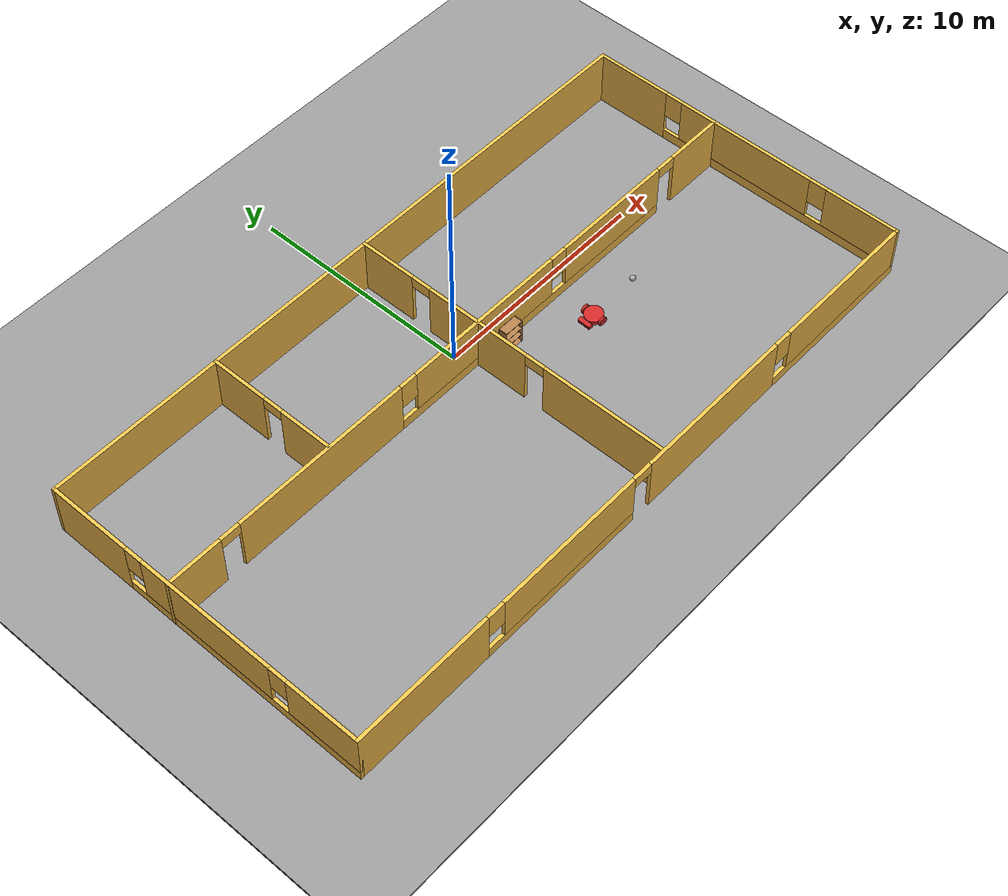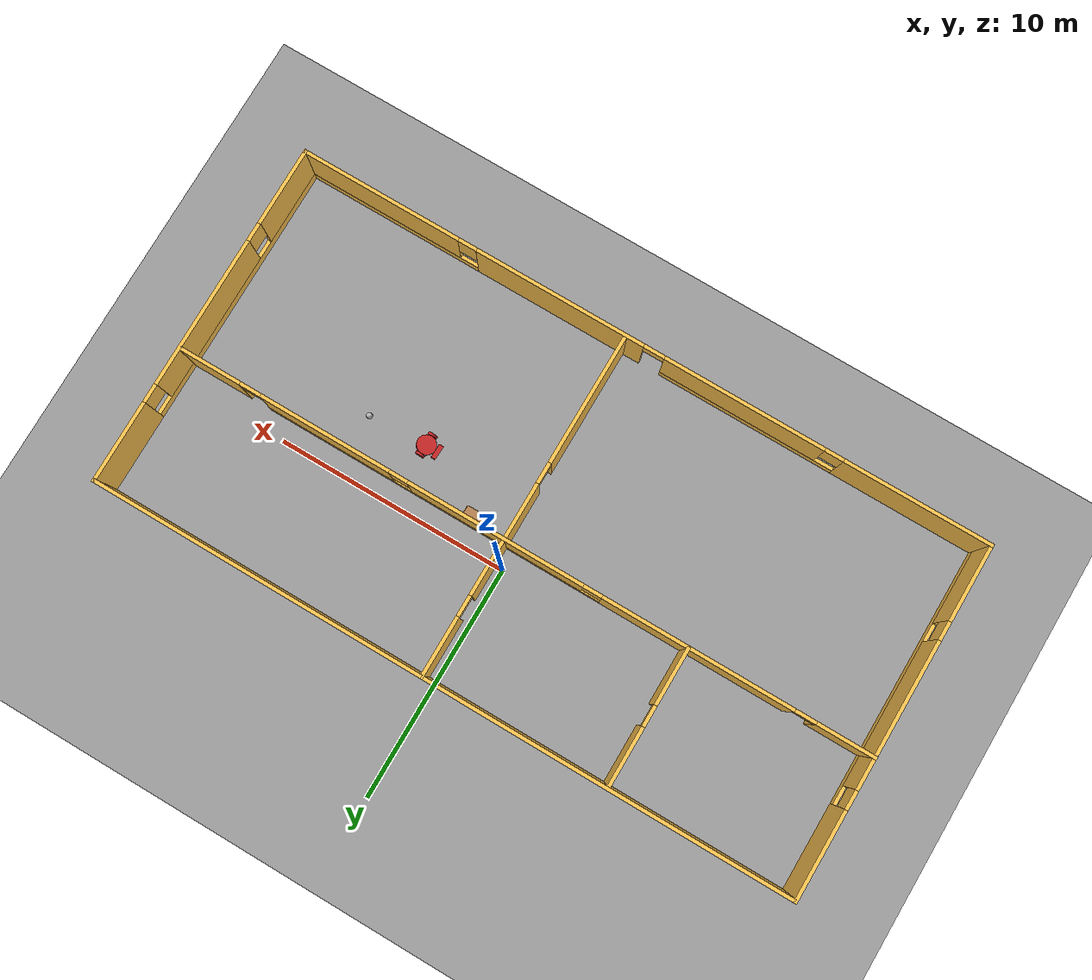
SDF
<sdf version="1.6">
 <world name="default">
  <model name="ground_plane">
   <static>1</static>
   <link name="link">
    <collision name="collision">
     <geometry><plane><normal>0 0 1</normal><size>100 100</size></plane></geometry>
     <surface><friction><ode><mu>100</mu><mu2>50</mu2></ode></friction></surface>
    </collision>
    <visual name="visual">
     <cast_shadows>0</cast_shadows>
     <geometry><plane><normal>0 0 1</normal><size>100 100</size></plane></geometry>
     <material>
      <script><uri>file://media/materials/scripts/gazebo.material</uri><name>Gazebo/Grey</name></script>
     </material>
    </visual>
   </link>
  </model>
  <model name="Building">
   <pose>-0.299558 -2.436 0 0 -0 0</pose>
   <link name="Wall_1">
    <pose>-14.92 0 0 0 0 -1.5708</pose>
    <visual name="Wall_1_Visual_0">
     <pose>-5.60194 0 1.25 0 -0 0</pose>
     <geometry><box><size>3.79611 0.15 2.5</size></box></geometry>
     <material>
      <script><uri>file://media/materials/scripts/gazebo.material</uri><name>Gazebo/Grey</name></script>
      <ambient>1 0.764706 0.305882 1</ambient>
     </material>
     <meta><layer>0</layer></meta>
    </visual>
    <collision name="Wall_1_Collision_0">
     <geometry><box><size>3.79611 0.15 2.5</size></box></geometry>
     <pose>-5.60194 0 1.25 0 -0 0</pose>
    </collision>
    <visual name="Wall_1_Visual_1">
     <pose>1.89806 0 0.25 0 -0 0</pose>
     <geometry><box><size>11.2039 0.15 0.5</size></box></geometry>
     <material>
      <script><uri>file://media/materials/scripts/gazebo.material</uri><name>Gazebo/Grey</name></script>
      <ambient>1 0.764706 0.305882 1</ambient>
     </material>
     <meta><layer>0</layer></meta>
    </visual>
    <collision name="Wall_1_Collision_1">
     <geometry><box><size>11.2039 0.15 0.5</size></box></geometry>
     <pose>1.89806 0 0.25 0 -0 0</pose>
    </collision>
    <visual name="Wall_1_Visual_2">
     <pose>0.228614 0 1.5 0 -0 0</pose>
     <geometry><box><size>6.265 0.15 2</size></box></geometry>
     <material>
      <script><uri>file://media/materials/scripts/gazebo.material</uri><name>Gazebo/Grey</name></script>
      <ambient>1 0.764706 0.305882 1</ambient>
     </material>
     <meta><layer>0</layer></meta>
    </visual>
    <collision name="Wall_1_Collision_2">
     <geometry><box><size>6.265 0.15 2</size></box></geometry>
     <pose>0.228614 0 1.5 0 -0 0</pose>
    </collision>
    <visual name="Wall_1_Visual_3">
     <pose>5.83056 0 1.5 0 -0 0</pose>
     <geometry><box><size>3.33888 0.15 2</size></box></geometry>
     <material>
      <script><uri>file://media/materials/scripts/gazebo.material</uri><name>Gazebo/Grey</name></script>
      <ambient>1 0.764706 0.305882 1</ambient>
     </material>
     <meta><layer>0</layer></meta>
    </visual>
    <collision name="Wall_1_Collision_3">
     <geometry><box><size>3.33888 0.15 2</size></box></geometry>
     <pose>5.83056 0 1.5 0 -0 0</pose>
    </collision>
    <visual name="Wall_1_Visual_4">
     <pose>-3.30389 0 1.9 0 -0 0</pose>
     <geometry><box><size>0.8 0.15 1.2</size></box></geometry>
     <material>
      <script><uri>file://media/materials/scripts/gazebo.material</uri><name>Gazebo/Grey</name></script>
      <ambient>1 0.764706 0.305882 1</ambient>
     </material>
     <meta><layer>0</layer></meta>
    </visual>
    <collision name="Wall_1_Collision_4">
     <geometry><box><size>0.8 0.15 1.2</size></box></geometry>
     <pose>-3.30389 0 1.9 0 -0 0</pose>
    </collision>
    <visual name="Wall_1_Visual_5">
     <pose>3.76112 0 1.9 0 -0 0</pose>
     <geometry><box><size>0.8 0.15 1.2</size></box></geometry>
     <material>
      <script><uri>file://media/materials/scripts/gazebo.material</uri><name>Gazebo/Grey</name></script>
      <ambient>1 0.764706 0.305882 1</ambient>
     </material>
     <meta><layer>0</layer></meta>
    </visual>
    <collision name="Wall_1_Collision_5">
     <geometry><box><size>0.8 0.15 1.2</size></box></geometry>
     <pose>3.76112 0 1.9 0 -0 0</pose>
    </collision>
   </link>
   <link name="Wall_12">
    <pose>-7.157 4.5 0 0 0 -1.5708</pose>
    <visual name="Wall_12_Visual_0">
     <pose>-1.68316 0 1.25 0 -0 0</pose>
     <geometry><box><size>2.63367 0.15 2.5</size></box></geometry>
     <material>
      <script><uri>file://media/materials/scripts/gazebo.material</uri><name>Gazebo/Grey</name></script>
      <ambient>1 0.764706 0.305882 1</ambient>
     </material>
     <meta><layer>0</layer></meta>
    </visual>
    <collision name="Wall_12_Collision_0">
     <geometry><box><size>2.63367 0.15 2.5</size></box></geometry>
     <pose>-1.68316 0 1.25 0 -0 0</pose>
    </collision>
    <visual name="Wall_12_Visual_1">
     <pose>1.76684 0 1.25 0 -0 0</pose>
     <geometry><box><size>2.46633 0.15 2.5</size></box></geometry>
     <material>
      <script><uri>file://media/materials/scripts/gazebo.material</uri><name>Gazebo/Grey</name></script>
      <ambient>1 0.764706 0.305882 1</ambient>
     </material>
     <meta><layer>0</layer></meta>
    </visual>
    <collision name="Wall_12_Collision_1">
     <geometry><box><size>2.46633 0.15 2.5</size></box></geometry>
     <pose>1.76684 0 1.25 0 -0 0</pose>
    </collision>
    <visual name="Wall_12_Visual_2">
     <pose>0.083673 0 2.25 0 -0 0</pose>
     <geometry><box><size>0.9 0.15 0.5</size></box></geometry>
     <material>
      <script><uri>file://media/materials/scripts/gazebo.material</uri><name>Gazebo/Grey</name></script>
      <ambient>1 0.764706 0.305882 1</ambient>
     </material>
     <meta><layer>0</layer></meta>
    </visual>
    <collision name="Wall_12_Collision_2">
     <geometry><box><size>0.9 0.15 0.5</size></box></geometry>
     <pose>0.083673 0 2.25 0 -0 0</pose>
    </collision>
   </link>
   <link name="Wall_14">
    <pose>0.697 4.5 0 0 0 -1.5708</pose>
    <visual name="Wall_14_Visual_0">
     <pose>-1.68316 0 1.25 0 -0 0</pose>
     <geometry><box><size>2.63367 0.15 2.5</size></box></geometry>
     <material>
      <script><uri>file://media/materials/scripts/gazebo.material</uri><name>Gazebo/Grey</name></script>
      <ambient>1 0.764706 0.305882 1</ambient>
     </material>
     <meta><layer>0</layer></meta>
    </visual>
    <collision name="Wall_14_Collision_0">
     <geometry><box><size>2.63367 0.15 2.5</size></box></geometry>
     <pose>-1.68316 0 1.25 0 -0 0</pose>
    </collision>
    <visual name="Wall_14_Visual_1">
     <pose>1.76684 0 1.25 0 -0 0</pose>
     <geometry><box><size>2.46633 0.15 2.5</size></box></geometry>
     <material>
      <script><uri>file://media/materials/scripts/gazebo.material</uri><name>Gazebo/Grey</name></script>
      <ambient>1 0.764706 0.305882 1</ambient>
     </material>
     <meta><layer>0</layer></meta>
    </visual>
    <collision name="Wall_14_Collision_1">
     <geometry><box><size>2.46633 0.15 2.5</size></box></geometry>
     <pose>1.76684 0 1.25 0 -0 0</pose>
    </collision>
    <visual name="Wall_14_Visual_2">
     <pose>0.083673 0 2.25 0 -0 0</pose>
     <geometry><box><size>0.9 0.15 0.5</size></box></geometry>
     <material>
      <script><uri>file://media/materials/scripts/gazebo.material</uri><name>Gazebo/Grey</name></script>
      <ambient>1 0.764706 0.305882 1</ambient>
     </material>
     <meta><layer>0</layer></meta>
    </visual>
    <collision name="Wall_14_Collision_2">
     <geometry><box><size>0.9 0.15 0.5</size></box></geometry>
     <pose>0.083673 0 2.25 0 -0 0</pose>
    </collision>
   </link>
   <link name="Wall_16">
    <pose>0.697 -2.85 0 0 0 -1.5708</pose>
    <visual name="Wall_16_Visual_0">
     <pose>-3.23943 0 1.25 0 -0 0</pose>
     <geometry><box><size>2.52114 0.15 2.5</size></box></geometry>
     <material>
      <script><uri>file://media/materials/scripts/gazebo.material</uri><name>Gazebo/Grey</name></script>
      <ambient>1 0.764706 0.305882 1</ambient>
     </material>
     <meta><layer>0</layer></meta>
    </visual>
    <collision name="Wall_16_Collision_0">
     <geometry><box><size>2.52114 0.15 2.5</size></box></geometry>
     <pose>-3.23943 0 1.25 0 -0 0</pose>
    </collision>
    <visual name="Wall_16_Visual_1">
     <pose>1.71057 0 1.25 0 -0 0</pose>
     <geometry><box><size>5.57886 0.15 2.5</size></box></geometry>
     <material>
      <script><uri>file://media/materials/scripts/gazebo.material</uri><name>Gazebo/Grey</name></script>
      <ambient>1 0.764706 0.305882 1</ambient>
     </material>
     <meta><layer>0</layer></meta>
    </visual>
    <collision name="Wall_16_Collision_1">
     <geometry><box><size>5.57886 0.15 2.5</size></box></geometry>
     <pose>1.71057 0 1.25 0 -0 0</pose>
    </collision>
    <visual name="Wall_16_Visual_2">
     <pose>-1.52886 0 2.25 0 -0 0</pose>
     <geometry><box><size>0.9 0.15 0.5</size></box></geometry>
     <material>
      <script><uri>file://media/materials/scripts/gazebo.material</uri><name>Gazebo/Grey</name></script>
      <ambient>1 0.764706 0.305882 1</ambient>
     </material>
     <meta><layer>0</layer></meta>
    </visual>
    <collision name="Wall_16_Collision_2">
     <geometry><box><size>0.9 0.15 0.5</size></box></geometry>
     <pose>-1.52886 0 2.25 0 -0 0</pose>
    </collision>
   </link>
   <link name="Wall_4">
    <pose>0.005 -7.425 0 0 -0 0</pose>
    <visual name="Wall_4_Visual_0">
     <pose>-11.8455 0 1.25 0 -0 0</pose>
     <geometry><box><size>6.30901 0.15 2.5</size></box></geometry>
     <material>
      <script><uri>file://media/materials/scripts/gazebo.material</uri><name>Gazebo/Grey</name></script>
      <ambient>1 0.764706 0.305882 1</ambient>
     </material>
     <meta><layer>0</layer></meta>
    </visual>
    <collision name="Wall_4_Collision_0">
     <geometry><box><size>6.30901 0.15 2.5</size></box></geometry>
     <pose>-11.8455 0 1.25 0 -0 0</pose>
    </collision>
    <visual name="Wall_4_Visual_1">
     <pose>3.58082 0 1.25 0 -0 0</pose>
     <geometry><box><size>7.34783 0.15 2.5</size></box></geometry>
     <material>
      <script><uri>file://media/materials/scripts/gazebo.material</uri><name>Gazebo/Grey</name></script>
      <ambient>1 0.764706 0.305882 1</ambient>
     </material>
     <meta><layer>0</layer></meta>
    </visual>
    <collision name="Wall_4_Collision_1">
     <geometry><box><size>7.34783 0.15 2.5</size></box></geometry>
     <pose>3.58082 0 1.25 0 -0 0</pose>
    </collision>
    <visual name="Wall_4_Visual_2">
     <pose>-4.84204 0 0.25 0 -0 0</pose>
     <geometry><box><size>7.6979 0.15 0.5</size></box></geometry>
     <material>
      <script><uri>file://media/materials/scripts/gazebo.material</uri><name>Gazebo/Grey</name></script>
      <ambient>1 0.764706 0.305882 1</ambient>
     </material>
     <meta><layer>0</layer></meta>
    </visual>
    <collision name="Wall_4_Collision_2">
     <geometry><box><size>7.6979 0.15 0.5</size></box></geometry>
     <pose>-4.84204 0 0.25 0 -0 0</pose>
    </collision>
    <visual name="Wall_4_Visual_3">
     <pose>11.1274 0 0.25 0 -0 0</pose>
     <geometry><box><size>7.74526 0.15 0.5</size></box></geometry>
     <material>
      <script><uri>file://media/materials/scripts/gazebo.material</uri><name>Gazebo/Grey</name></script>
      <ambient>1 0.764706 0.305882 1</ambient>
     </material>
     <meta><layer>0</layer></meta>
    </visual>
    <collision name="Wall_4_Collision_3">
     <geometry><box><size>7.74526 0.15 0.5</size></box></geometry>
     <pose>11.1274 0 0.25 0 -0 0</pose>
    </collision>
    <visual name="Wall_4_Visual_4">
     <pose>-4.44204 0 1.5 0 -0 0</pose>
     <geometry><box><size>6.8979 0.15 2</size></box></geometry>
     <material>
      <script><uri>file://media/materials/scripts/gazebo.material</uri><name>Gazebo/Grey</name></script>
      <ambient>1 0.764706 0.305882 1</ambient>
     </material>
     <meta><layer>0</layer></meta>
    </visual>
    <collision name="Wall_4_Collision_4">
     <geometry><box><size>6.8979 0.15 2</size></box></geometry>
     <pose>-4.44204 0 1.5 0 -0 0</pose>
    </collision>
    <visual name="Wall_4_Visual_5">
     <pose>-4.44204 0 1.5 0 -0 0</pose>
     <geometry><box><size>6.8979 0.15 2</size></box></geometry>
     <material>
      <script><uri>file://media/materials/scripts/gazebo.material</uri><name>Gazebo/Grey</name></script>
      <ambient>1 0.764706 0.305882 1</ambient>
     </material>
     <meta><layer>0</layer></meta>
    </visual>
    <collision name="Wall_4_Collision_5">
     <geometry><box><size>6.8979 0.15 2</size></box></geometry>
     <pose>-4.44204 0 1.5 0 -0 0</pose>
    </collision>
    <visual name="Wall_4_Visual_6">
     <pose>11.5274 0 1.5 0 -0 0</pose>
     <geometry><box><size>6.94526 0.15 2</size></box></geometry>
     <material>
      <script><uri>file://media/materials/scripts/gazebo.material</uri><name>Gazebo/Grey</name></script>
      <ambient>1 0.764706 0.305882 1</ambient>
     </material>
     <meta><layer>0</layer></meta>
    </visual>
    <collision name="Wall_4_Collision_6">
     <geometry><box><size>6.94526 0.15 2</size></box></geometry>
     <pose>11.5274 0 1.5 0 -0 0</pose>
    </collision>
    <visual name="Wall_4_Visual_7">
     <pose>-8.29099 0 1.9 0 -0 0</pose>
     <geometry><box><size>0.8 0.15 1.2</size></box></geometry>
     <material>
      <script><uri>file://media/materials/scripts/gazebo.material</uri><name>Gazebo/Grey</name></script>
      <ambient>1 0.764706 0.305882 1</ambient>
     </material>
     <meta><layer>0</layer></meta>
    </visual>
    <collision name="Wall_4_Collision_7">
     <geometry><box><size>0.8 0.15 1.2</size></box></geometry>
     <pose>-8.29099 0 1.9 0 -0 0</pose>
    </collision>
    <visual name="Wall_4_Visual_8">
     <pose>7.65474 0 1.9 0 -0 0</pose>
     <geometry><box><size>0.8 0.15 1.2</size></box></geometry>
     <material>
      <script><uri>file://media/materials/scripts/gazebo.material</uri><name>Gazebo/Grey</name></script>
      <ambient>1 0.764706 0.305882 1</ambient>
     </material>
     <meta><layer>0</layer></meta>
    </visual>
    <collision name="Wall_4_Collision_8">
     <geometry><box><size>0.8 0.15 1.2</size></box></geometry>
     <pose>7.65474 0 1.9 0 -0 0</pose>
    </collision>
    <visual name="Wall_4_Visual_9">
     <pose>-0.543092 0 2.25 0 -0 0</pose>
     <geometry><box><size>0.9 0.15 0.5</size></box></geometry>
     <material>
      <script><uri>file://media/materials/scripts/gazebo.material</uri><name>Gazebo/Grey</name></script>
      <ambient>1 0.764706 0.305882 1</ambient>
     </material>
     <meta><layer>0</layer></meta>
    </visual>
    <collision name="Wall_4_Collision_9">
     <geometry><box><size>0.9 0.15 0.5</size></box></geometry>
     <pose>-0.543092 0 2.25 0 -0 0</pose>
    </collision>
    <visual name="Wall_4_Visual_10">
     <pose>-0.543092 0 2.25 0 -0 0</pose>
     <geometry><box><size>0.9 0.15 0.5</size></box></geometry>
     <material>
      <script><uri>file://media/materials/scripts/gazebo.material</uri><name>Gazebo/Grey</name></script>
      <ambient>1 0.764706 0.305882 1</ambient>
     </material>
     <meta><layer>0</layer></meta>
    </visual>
    <collision name="Wall_4_Collision_10">
     <geometry><box><size>0.9 0.15 0.5</size></box></geometry>
     <pose>-0.543092 0 2.25 0 -0 0</pose>
    </collision>
   </link>
   <link name="Wall_6">
    <collision name="Wall_6_Collision">
     <geometry><box><size>30 0.15 2.5</size></box></geometry>
     <pose>0 0 1.25 0 -0 0</pose>
    </collision>
    <visual name="Wall_6_Visual">
     <pose>0 0 1.25 0 -0 0</pose>
     <geometry><box><size>30 0.15 2.5</size></box></geometry>
     <material>
      <script><uri>file://media/materials/scripts/gazebo.material</uri><name>Gazebo/Grey</name></script>
      <ambient>1 0.764706 0.305882 1</ambient>
     </material>
     <meta><layer>0</layer></meta>
    </visual>
    <pose>0.005 7.425 0 0 -0 0</pose>
   </link>
   <link name="Wall_7">
    <pose>14.93 0 0 0 0 -1.5708</pose>
    <visual name="Wall_7_Visual_0">
     <pose>-5.74231 0 1.25 0 -0 0</pose>
     <geometry><box><size>3.51538 0.15 2.5</size></box></geometry>
     <material>
      <script><uri>file://media/materials/scripts/gazebo.material</uri><name>Gazebo/Grey</name></script>
      <ambient>1 0.764706 0.305882 1</ambient>
     </material>
     <meta><layer>0</layer></meta>
    </visual>
    <collision name="Wall_7_Collision_0">
     <geometry><box><size>3.51538 0.15 2.5</size></box></geometry>
     <pose>-5.74231 0 1.25 0 -0 0</pose>
    </collision>
    <visual name="Wall_7_Visual_1">
     <pose>1.75769 0 0.25 0 -0 0</pose>
     <geometry><box><size>11.4846 0.15 0.5</size></box></geometry>
     <material>
      <script><uri>file://media/materials/scripts/gazebo.material</uri><name>Gazebo/Grey</name></script>
      <ambient>1 0.764706 0.305882 1</ambient>
     </material>
     <meta><layer>0</layer></meta>
    </visual>
    <collision name="Wall_7_Collision_1">
     <geometry><box><size>11.4846 0.15 0.5</size></box></geometry>
     <pose>1.75769 0 0.25 0 -0 0</pose>
    </collision>
    <visual name="Wall_7_Visual_2">
     <pose>0.055868 0 1.5 0 -0 0</pose>
     <geometry><box><size>6.48097 0.15 2</size></box></geometry>
     <material>
      <script><uri>file://media/materials/scripts/gazebo.material</uri><name>Gazebo/Grey</name></script>
      <ambient>1 0.764706 0.305882 1</ambient>
     </material>
     <meta><layer>0</layer></meta>
    </visual>
    <collision name="Wall_7_Collision_2">
     <geometry><box><size>6.48097 0.15 2</size></box></geometry>
     <pose>0.055868 0 1.5 0 -0 0</pose>
    </collision>
    <visual name="Wall_7_Visual_3">
     <pose>5.79818 0 1.5 0 -0 0</pose>
     <geometry><box><size>3.40365 0.15 2</size></box></geometry>
     <material>
      <script><uri>file://media/materials/scripts/gazebo.material</uri><name>Gazebo/Grey</name></script>
      <ambient>1 0.764706 0.305882 1</ambient>
     </material>
     <meta><layer>0</layer></meta>
    </visual>
    <collision name="Wall_7_Collision_3">
     <geometry><box><size>3.40365 0.15 2</size></box></geometry>
     <pose>5.79818 0 1.5 0 -0 0</pose>
    </collision>
    <visual name="Wall_7_Visual_4">
     <pose>-3.58462 0 1.9 0 -0 0</pose>
     <geometry><box><size>0.8 0.15 1.2</size></box></geometry>
     <material>
      <script><uri>file://media/materials/scripts/gazebo.material</uri><name>Gazebo/Grey</name></script>
      <ambient>1 0.764706 0.305882 1</ambient>
     </material>
     <meta><layer>0</layer></meta>
    </visual>
    <collision name="Wall_7_Collision_4">
     <geometry><box><size>0.8 0.15 1.2</size></box></geometry>
     <pose>-3.58462 0 1.9 0 -0 0</pose>
    </collision>
    <visual name="Wall_7_Visual_5">
     <pose>3.69635 0 1.9 0 -0 0</pose>
     <geometry><box><size>0.8 0.15 1.2</size></box></geometry>
     <material>
      <script><uri>file://media/materials/scripts/gazebo.material</uri><name>Gazebo/Grey</name></script>
      <ambient>1 0.764706 0.305882 1</ambient>
     </material>
     <meta><layer>0</layer></meta>
    </visual>
    <collision name="Wall_7_Collision_5">
     <geometry><box><size>0.8 0.15 1.2</size></box></geometry>
     <pose>3.69635 0 1.9 0 -0 0</pose>
    </collision>
   </link>
   <link name="Wall_9">
    <pose>-0.005 1.542 0 0 -0 0</pose>
    <visual name="Wall_9_Visual_0">
     <pose>-13.7533 0 1.25 0 -0 0</pose>
     <geometry><box><size>2.49331 0.15 2.5</size></box></geometry>
     <material>
      <script><uri>file://media/materials/scripts/gazebo.material</uri><name>Gazebo/Grey</name></script>
      <ambient>1 0.764706 0.305882 1</ambient>
     </material>
     <meta><layer>0</layer></meta>
    </visual>
    <collision name="Wall_9_Collision_0">
     <geometry><box><size>2.49331 0.15 2.5</size></box></geometry>
     <pose>-13.7533 0 1.25 0 -0 0</pose>
    </collision>
    <visual name="Wall_9_Visual_1">
     <pose>-7.55232 0 1.25 0 -0 0</pose>
     <geometry><box><size>8.10873 0.15 2.5</size></box></geometry>
     <material>
      <script><uri>file://media/materials/scripts/gazebo.material</uri><name>Gazebo/Grey</name></script>
      <ambient>1 0.764706 0.305882 1</ambient>
     </material>
     <meta><layer>0</layer></meta>
    </visual>
    <collision name="Wall_9_Collision_1">
     <geometry><box><size>8.10873 0.15 2.5</size></box></geometry>
     <pose>-7.55232 0 1.25 0 -0 0</pose>
    </collision>
    <visual name="Wall_9_Visual_2">
     <pose>13.6177 0 1.25 0 -0 0</pose>
     <geometry><box><size>2.76464 0.15 2.5</size></box></geometry>
     <material>
      <script><uri>file://media/materials/scripts/gazebo.material</uri><name>Gazebo/Grey</name></script>
      <ambient>1 0.764706 0.305882 1</ambient>
     </material>
     <meta><layer>0</layer></meta>
    </visual>
    <collision name="Wall_9_Collision_2">
     <geometry><box><size>2.76464 0.15 2.5</size></box></geometry>
     <pose>13.6177 0 1.25 0 -0 0</pose>
    </collision>
    <visual name="Wall_9_Visual_3">
     <pose>3.9187 0 0.25 0 -0 0</pose>
     <geometry><box><size>14.8333 0.15 0.5</size></box></geometry>
     <material>
      <script><uri>file://media/materials/scripts/gazebo.material</uri><name>Gazebo/Grey</name></script>
      <ambient>1 0.764706 0.305882 1</ambient>
     </material>
     <meta><layer>0</layer></meta>
    </visual>
    <collision name="Wall_9_Collision_3">
     <geometry><box><size>14.8333 0.15 0.5</size></box></geometry>
     <pose>3.9187 0 0.25 0 -0 0</pose>
    </collision>
    <visual name="Wall_9_Visual_4">
     <pose>1.08957 0 1.5 0 -0 0</pose>
     <geometry><box><size>7.57507 0.15 2</size></box></geometry>
     <material>
      <script><uri>file://media/materials/scripts/gazebo.material</uri><name>Gazebo/Grey</name></script>
      <ambient>1 0.764706 0.305882 1</ambient>
     </material>
     <meta><layer>0</layer></meta>
    </visual>
    <collision name="Wall_9_Collision_4">
     <geometry><box><size>7.57507 0.15 2</size></box></geometry>
     <pose>1.08957 0 1.5 0 -0 0</pose>
    </collision>
    <visual name="Wall_9_Visual_5">
     <pose>8.50624 0 1.5 0 -0 0</pose>
     <geometry><box><size>5.65825 0.15 2</size></box></geometry>
     <material>
      <script><uri>file://media/materials/scripts/gazebo.material</uri><name>Gazebo/Grey</name></script>
      <ambient>1 0.764706 0.305882 1</ambient>
     </material>
     <meta><layer>0</layer></meta>
    </visual>
    <collision name="Wall_9_Collision_5">
     <geometry><box><size>5.65825 0.15 2</size></box></geometry>
     <pose>8.50624 0 1.5 0 -0 0</pose>
    </collision>
    <visual name="Wall_9_Visual_6">
     <pose>-3.09796 0 1.9 0 -0 0</pose>
     <geometry><box><size>0.8 0.15 1.2</size></box></geometry>
     <material>
      <script><uri>file://media/materials/scripts/gazebo.material</uri><name>Gazebo/Grey</name></script>
      <ambient>1 0.764706 0.305882 1</ambient>
     </material>
     <meta><layer>0</layer></meta>
    </visual>
    <collision name="Wall_9_Collision_6">
     <geometry><box><size>0.8 0.15 1.2</size></box></geometry>
     <pose>-3.09796 0 1.9 0 -0 0</pose>
    </collision>
    <visual name="Wall_9_Visual_7">
     <pose>5.27711 0 1.9 0 -0 0</pose>
     <geometry><box><size>0.8 0.15 1.2</size></box></geometry>
     <material>
      <script><uri>file://media/materials/scripts/gazebo.material</uri><name>Gazebo/Grey</name></script>
      <ambient>1 0.764706 0.305882 1</ambient>
     </material>
     <meta><layer>0</layer></meta>
    </visual>
    <collision name="Wall_9_Collision_7">
     <geometry><box><size>0.8 0.15 1.2</size></box></geometry>
     <pose>5.27711 0 1.9 0 -0 0</pose>
    </collision>
    <visual name="Wall_9_Visual_8">
     <pose>-12.0567 0 2.25 0 -0 0</pose>
     <geometry><box><size>0.9 0.15 0.5</size></box></geometry>
     <material>
      <script><uri>file://media/materials/scripts/gazebo.material</uri><name>Gazebo/Grey</name></script>
      <ambient>1 0.764706 0.305882 1</ambient>
     </material>
     <meta><layer>0</layer></meta>
    </visual>
    <collision name="Wall_9_Collision_8">
     <geometry><box><size>0.9 0.15 0.5</size></box></geometry>
     <pose>-12.0567 0 2.25 0 -0 0</pose>
    </collision>
    <visual name="Wall_9_Visual_9">
     <pose>11.7854 0 2.25 0 -0 0</pose>
     <geometry><box><size>0.9 0.15 0.5</size></box></geometry>
     <material>
      <script><uri>file://media/materials/scripts/gazebo.material</uri><name>Gazebo/Grey</name></script>
      <ambient>1 0.764706 0.305882 1</ambient>
     </material>
     <meta><layer>0</layer></meta>
    </visual>
    <collision name="Wall_9_Collision_9">
     <geometry><box><size>0.9 0.15 0.5</size></box></geometry>
     <pose>11.7854 0 2.25 0 -0 0</pose>
    </collision>
   </link>
   <static>1</static>
  </model>
  <model name="Robot_0">
   <link name="link_0">
    <pose>0 0 0.2 0 -0 0</pose>
    <inertial>
     <mass>1</mass>
     <inertia><ixx>0.145833</ixx><ixy>0</ixy><ixz>0</ixz><iyy>0.145833</iyy><iyz>0</iyz><izz>0.125</izz></inertia>
    </inertial>
    <visual name="visual">
     <geometry><cylinder><radius>0.4</radius><length>0.2</length></cylinder></geometry>
     <material>
      <lighting>1</lighting>
      <script><uri>file://media/materials/scripts/gazebo.material</uri><name>Gazebo/Red</name></script>
      <shader type="pixel"><normal_map>__default__</normal_map></shader>
      <ambient>1 0.1 0.1 1</ambient>
      <diffuse>1 0.1 0.1 1</diffuse>
      <specular>0.01 0.01 0.01 1</specular>
      <emissive>0 0 0 1</emissive>
     </material>
    </visual>
    <collision name="collision">
     <geometry><cylinder><radius>0.4</radius><length>0.2</length></cylinder></geometry>
     <surface>
      <friction>
       <ode><mu>1</mu><mu2>1</mu2><fdir1>0 0 0</fdir1><slip1>0</slip1><slip2>0</slip2></ode>
       <torsional>
        <coefficient>1</coefficient>
        <patch_radius>0</patch_radius>
        <surface_radius>0</surface_radius>
        <use_patch_radius>1</use_patch_radius>
        <ode><slip>0</slip></ode>
       </torsional>
      </friction>
      <bounce><restitution_coefficient>0</restitution_coefficient><threshold>1e+06</threshold></bounce>
      <contact>
       <collide_without_contact>0</collide_without_contact>
       <collide_without_contact_bitmask>1</collide_without_contact_bitmask>
       <collide_bitmask>1</collide_bitmask>
       <ode>
        <soft_cfm>0</soft_cfm>
        <soft_erp>0.2</soft_erp>
        <kp>1e+13</kp>
        <kd>1</kd>
        <max_vel>0.01</max_vel>
        <min_depth>0</min_depth>
       </ode>
       <bullet>
        <split_impulse>1</split_impulse>
        <split_impulse_penetration_threshold>-0.01</split_impulse_penetration_threshold>
        <soft_cfm>0</soft_cfm>
        <soft_erp>0.2</soft_erp>
        <kp>1e+13</kp>
        <kd>1</kd>
       </bullet>
      </contact>
     </surface>
    </collision>
   </link>
   <link name="link_1">
    <pose>0 -0.450019 0.2 1.5707 -0 0</pose>
    <inertial>
     <mass>1</mass>
     <inertia><ixx>0.145833</ixx><ixy>0</ixy><ixz>0</ixz><iyy>0.145833</iyy><iyz>0</iyz><izz>0.125</izz></inertia>
    </inertial>
    <visual name="visual">
     <geometry><cylinder><radius>0.2</radius><length>0.1</length></cylinder></geometry>
     <material>
      <lighting>1</lighting>
      <script><uri>file://media/materials/scripts/gazebo.material</uri><name>Gazebo/Red</name></script>
      <shader type="pixel"><normal_map>__default__</normal_map></shader>
      <ambient>1 0.1 0.1 1</ambient>
      <diffuse>1 0.1 0.1 1</diffuse>
      <specular>0.01 0.01 0.01 1</specular>
      <emissive>0 0 0 1</emissive>
     </material>
    </visual>
    <collision name="collision">
     <geometry><cylinder><radius>0.2</radius><length>0.1</length></cylinder></geometry>
     <surface>
      <friction>
       <ode><mu>1</mu><mu2>1</mu2><fdir1>0 0 0</fdir1><slip1>0</slip1><slip2>0</slip2></ode>
       <torsional>
        <coefficient>1</coefficient>
        <patch_radius>0</patch_radius>
        <surface_radius>0</surface_radius>
        <use_patch_radius>1</use_patch_radius>
        <ode><slip>0</slip></ode>
       </torsional>
      </friction>
      <bounce><restitution_coefficient>0</restitution_coefficient><threshold>1e+06</threshold></bounce>
      <contact>
       <collide_without_contact>0</collide_without_contact>
       <collide_without_contact_bitmask>1</collide_without_contact_bitmask>
       <collide_bitmask>1</collide_bitmask>
       <ode>
        <soft_cfm>0</soft_cfm>
        <soft_erp>0.2</soft_erp>
        <kp>1e+13</kp>
        <kd>1</kd>
        <max_vel>0.01</max_vel>
        <min_depth>0</min_depth>
       </ode>
       <bullet>
        <split_impulse>1</split_impulse>
        <split_impulse_penetration_threshold>-0.01</split_impulse_penetration_threshold>
        <soft_cfm>0</soft_cfm>
        <soft_erp>0.2</soft_erp>
        <kp>1e+13</kp>
        <kd>1</kd>
       </bullet>
      </contact>
     </surface>
    </collision>
   </link>
   <link name="link_1_clone">
    <pose>0 0.450019 0.2 1.5707 -0 0</pose>
    <inertial>
     <mass>1</mass>
     <inertia><ixx>0.145833</ixx><ixy>0</ixy><ixz>0</ixz><iyy>0.145833</iyy><iyz>0</iyz><izz>0.125</izz></inertia>
    </inertial>
    <visual name="visual">
     <geometry><cylinder><radius>0.2</radius><length>0.1</length></cylinder></geometry>
     <material>
      <lighting>1</lighting>
      <script><uri>file://media/materials/scripts/gazebo.material</uri><name>Gazebo/Red</name></script>
      <shader type="pixel"><normal_map>__default__</normal_map></shader>
      <ambient>1 0.1 0.1 1</ambient>
      <diffuse>1 0.1 0.1 1</diffuse>
      <specular>0.01 0.01 0.01 1</specular>
      <emissive>0 0 0 1</emissive>
     </material>
    </visual>
    <collision name="collision">
     <geometry><cylinder><radius>0.2</radius><length>0.1</length></cylinder></geometry>
     <surface>
      <friction>
       <ode><mu>1</mu><mu2>1</mu2><fdir1>0 0 0</fdir1><slip1>0</slip1><slip2>0</slip2></ode>
       <torsional>
        <coefficient>1</coefficient>
        <patch_radius>0</patch_radius>
        <surface_radius>0</surface_radius>
        <use_patch_radius>1</use_patch_radius>
        <ode><slip>0</slip></ode>
       </torsional>
      </friction>
      <bounce><restitution_coefficient>0</restitution_coefficient><threshold>1e+06</threshold></bounce>
      <contact>
       <collide_without_contact>0</collide_without_contact>
       <collide_without_contact_bitmask>1</collide_without_contact_bitmask>
       <collide_bitmask>1</collide_bitmask>
       <ode>
        <soft_cfm>0</soft_cfm>
        <soft_erp>0.2</soft_erp>
        <kp>1e+13</kp>
        <kd>1</kd>
        <max_vel>0.01</max_vel>
        <min_depth>0</min_depth>
       </ode>
       <bullet>
        <split_impulse>1</split_impulse>
        <split_impulse_penetration_threshold>-0.01</split_impulse_penetration_threshold>
        <soft_cfm>0</soft_cfm>
        <soft_erp>0.2</soft_erp>
        <kp>1e+13</kp>
        <kd>1</kd>
       </bullet>
      </contact>
     </surface>
    </collision>
   </link>
   <link name="link_2">
    <pose>-0.5 0 0.2 0 -0 0</pose>
    <inertial>
     <mass>0.1</mass>
     <inertia>
      <ixx>0.166667</ixx>
      <ixy>0</ixy>
      <ixz>0</ixz>
      <iyy>0.166667</iyy>
      <iyz>0</iyz>
      <izz>0.166667</izz>
     </inertia>
    </inertial>
    <visual name="visual">
     <geometry><box><size>0.2 0.6 0.2</size></box></geometry>
     <material>
      <lighting>1</lighting>
      <script><uri>file://media/materials/scripts/gazebo.material</uri><name>Gazebo/Red</name></script>
      <shader type="pixel"><normal_map>__default__</normal_map></shader>
      <ambient>1 0.1 0.1 1</ambient>
      <diffuse>1 0.1 0.1 1</diffuse>
      <specular>0.01 0.01 0.01 1</specular>
      <emissive>0 0 0 1</emissive>
     </material>
    </visual>
    <collision name="collision">
     <geometry><box><size>0.2 0.6 0.2</size></box></geometry>
     <surface>
      <friction>
       <ode><mu>1</mu><mu2>1</mu2><fdir1>0 0 0</fdir1><slip1>0</slip1><slip2>0</slip2></ode>
       <torsional>
        <coefficient>1</coefficient>
        <patch_radius>0</patch_radius>
        <surface_radius>0</surface_radius>
        <use_patch_radius>1</use_patch_radius>
        <ode><slip>0</slip></ode>
       </torsional>
      </friction>
      <bounce><restitution_coefficient>0</restitution_coefficient><threshold>1e+06</threshold></bounce>
      <contact>
       <collide_without_contact>0</collide_without_contact>
       <collide_without_contact_bitmask>1</collide_without_contact_bitmask>
       <collide_bitmask>1</collide_bitmask>
       <ode>
        <soft_cfm>0</soft_cfm>
        <soft_erp>0.2</soft_erp>
        <kp>1e+13</kp>
        <kd>1</kd>
        <max_vel>0.01</max_vel>
        <min_depth>0</min_depth>
       </ode>
       <bullet>
        <split_impulse>1</split_impulse>
        <split_impulse_penetration_threshold>-0.01</split_impulse_penetration_threshold>
        <soft_cfm>0</soft_cfm>
        <soft_erp>0.2</soft_erp>
        <kp>1e+13</kp>
        <kd>1</kd>
       </bullet>
      </contact>
     </surface>
    </collision>
   </link>
   <joint name="link_0_JOINT_0" type="revolute">
    <parent>link_0</parent>
    <child>link_1</child>
    <axis>
     <xyz>0 0 1</xyz>
     <use_parent_model_frame>0</use_parent_model_frame>
     <limit>
      <lower>-1.79769e+308</lower>
      <upper>1.79769e+308</upper>
      <effort>-1</effort>
      <velocity>-1</velocity>
     </limit>
     <dynamics>
      <spring_reference>0</spring_reference>
      <spring_stiffness>0</spring_stiffness>
      <damping>0</damping>
     </dynamics>
    </axis>
    <physics>
     <ode><limit><cfm>0</cfm><erp>0.2</erp></limit><suspension><cfm>0</cfm><erp>0.2</erp></suspension></ode>
    </physics>
   </joint>
   <joint name="link_0_JOINT_1" type="revolute">
    <parent>link_0</parent>
    <child>link_1_clone</child>
    <axis>
     <xyz>0 0 1</xyz>
     <use_parent_model_frame>0</use_parent_model_frame>
     <limit>
      <lower>-1.79769e+308</lower>
      <upper>1.79769e+308</upper>
      <effort>-1</effort>
      <velocity>-1</velocity>
     </limit>
     <dynamics>
      <spring_reference>0</spring_reference>
      <spring_stiffness>0</spring_stiffness>
      <damping>0</damping>
     </dynamics>
    </axis>
    <physics>
     <ode><limit><cfm>0</cfm><erp>0.2</erp></limit><suspension><cfm>0</cfm><erp>0.2</erp></suspension></ode>
    </physics>
   </joint>
   <joint name="link_0_JOINT_9" type="fixed">
    <parent>link_0</parent>
    <child>link_2</child>
    <physics>
     <ode><limit><cfm>0</cfm><erp>0.2</erp></limit><suspension><cfm>0</cfm><erp>0.2</erp></suspension></ode>
    </physics>
   </joint>
   <static>0</static>
   <pose>5.11604 -2.71179 0.002884 1e-06 -0.169897 -0.036809</pose>
  </model>
  <model name="bookshelf">
   <static>1</static>
   <link name="link">
    <inertial><mass>1</mass></inertial>
    <collision name="back">
     <pose>0 0.005 0.6 0 -0 0</pose>
     <geometry><box><size>0.9 0.01 1.2</size></box></geometry>
    </collision>
    <visual name="visual1">
     <pose>0 0.005 0.6 0 -0 0</pose>
     <geometry><box><size>0.9 0.01 1.2</size></box></geometry>
     <material>
      <script><uri>file://media/materials/scripts/gazebo.material</uri><name>Gazebo/Wood</name></script>
     </material>
    </visual>
    <collision name="left_side">
     <pose>0.45 -0.195 0.6 0 -0 0</pose>
     <geometry><box><size>0.02 0.4 1.2</size></box></geometry>
    </collision>
    <visual name="visual2">
     <pose>0.45 -0.195 0.6 0 -0 0</pose>
     <geometry><box><size>0.02 0.4 1.2</size></box></geometry>
     <material>
      <script><uri>file://media/materials/scripts/gazebo.material</uri><name>Gazebo/Wood</name></script>
     </material>
    </visual>
    <collision name="right_side">
     <pose>-0.45 -0.195 0.6 0 -0 0</pose>
     <geometry><box><size>0.02 0.4 1.2</size></box></geometry>
    </collision>
    <visual name="visual3">
     <pose>-0.45 -0.195 0.6 0 -0 0</pose>
     <geometry><box><size>0.02 0.4 1.2</size></box></geometry>
     <material>
      <script><uri>file://media/materials/scripts/gazebo.material</uri><name>Gazebo/Wood</name></script>
     </material>
    </visual>
    <collision name="bottom">
     <pose>0 -0.195 0.03 0 -0 0</pose>
     <geometry><box><size>0.88 0.4 0.06</size></box></geometry>
    </collision>
    <visual name="visual4">
     <pose>0 -0.195 0.03 0 -0 0</pose>
     <geometry><box><size>0.88 0.4 0.06</size></box></geometry>
     <material>
      <script><uri>file://media/materials/scripts/gazebo.material</uri><name>Gazebo/Wood</name></script>
     </material>
    </visual>
    <collision name="top">
     <pose>0 -0.195 1.19 0 -0 0</pose>
     <geometry><box><size>0.88 0.4 0.02</size></box></geometry>
    </collision>
    <visual name="visual5">
     <pose>0 -0.195 1.19 0 -0 0</pose>
     <geometry><box><size>0.88 0.4 0.02</size></box></geometry>
     <material>
      <script><uri>file://media/materials/scripts/gazebo.material</uri><name>Gazebo/Wood</name></script>
     </material>
    </visual>
    <collision name="low_shelf">
     <pose>0 -0.195 0.43 0 -0 0</pose>
     <geometry><box><size>0.88 0.4 0.02</size></box></geometry>
    </collision>
    <visual name="visual6">
     <pose>0 -0.195 0.43 0 -0 0</pose>
     <geometry><box><size>0.88 0.4 0.02</size></box></geometry>
     <material>
      <script><uri>file://media/materials/scripts/gazebo.material</uri><name>Gazebo/Wood</name></script>
     </material>
    </visual>
    <collision name="high_shelf">
     <pose>0 -0.195 0.8 0 -0 0</pose>
     <geometry><box><size>0.88 0.4 0.02</size></box></geometry>
    </collision>
    <visual name="visual7">
     <pose>0 -0.195 0.8 0 -0 0</pose>
     <geometry><box><size>0.88 0.4 0.02</size></box></geometry>
     <material>
      <script><uri>file://media/materials/scripts/gazebo.material</uri><name>Gazebo/Wood</name></script>
     </material>
    </visual>
   </link>
   <pose>1.90259 -1.01416 0 0 -0 0</pose>
  </model>
  <model name="ground_plane_0">
   <static>1</static>
   <link name="link">
    <collision name="collision">
     <geometry><plane><normal>0 0 1</normal><size>100 100</size></plane></geometry>
     <surface><friction><ode><mu>100</mu><mu2>50</mu2></ode></friction></surface>
    </collision>
    <visual name="visual">
     <cast_shadows>0</cast_shadows>
     <geometry><plane><normal>0 0 1</normal><size>100 100</size></plane></geometry>
     <material>
      <script><uri>file://media/materials/scripts/gazebo.material</uri><name>Gazebo/Grey</name></script>
     </material>
    </visual>
   </link>
   <pose>11.2711 2.15134 0 0 -0 0</pose>
  </model>
  <model name="frc2016_ball">
   <pose>7.62199 -2.57387 0.127 0 -0 0</pose>
   <link name="link">
    <inertial>
     <mass>0.213</mass>
     <inertia>
      <ixx>0.00322667</ixx>
      <ixy>0</ixy>
      <ixz>0</ixz>
      <iyy>0.00322667</iyy>
      <iyz>0</iyz>
      <izz>0.00322667</izz>
     </inertia>
    </inertial>
    <visual name="visual"><geometry><sphere><radius>0.127</radius></sphere></geometry></visual>
    <collision name="collision">
     <geometry><sphere><radius>0.127</radius></sphere></geometry>
     <surface>
      <bounce><restitution_coefficient>0.15937</restitution_coefficient><threshold>0</threshold></bounce>
      <contact><ode><max_vel>100</max_vel><min_depth>0.001</min_depth></ode></contact>
     </surface>
    </collision>
   </link>
  </model>
 </world>
</sdf>
